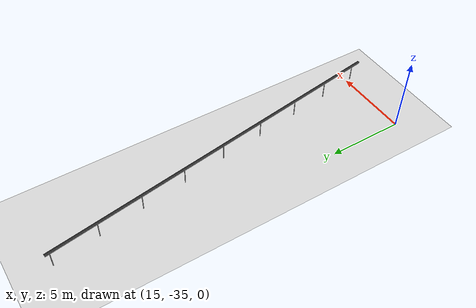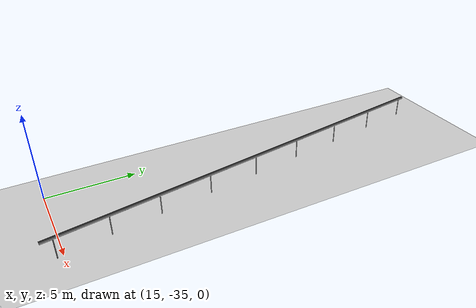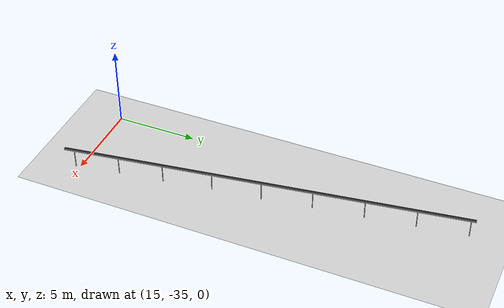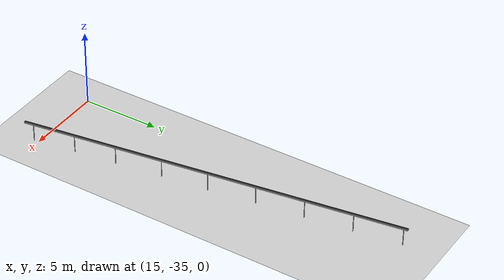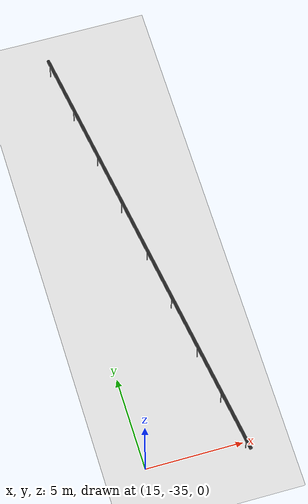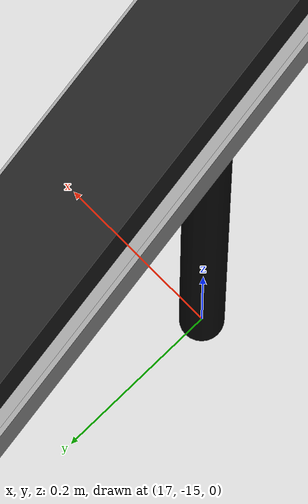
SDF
<sdf version="1.7">
 <world name="default">
  <atmosphere type="adiabatic"/>
  <light name="sun" type="directional">
   <direction>-0.5 0.1 -0.9</direction>
   <pose>0 0 10 0.0 0.0 0.0</pose>
   <attenuation>
    <range>1000</range>
    <quadratic>0.001</quadratic>
    <constant>0.9</constant>
    <linear>0.01</linear>
   </attenuation>
   <diffuse>0.8 0.8 0.8 1</diffuse>
   <specular>0.2 0.2 0.2 1</specular>
   <spot><inner_angle>0</inner_angle><outer_angle>0</outer_angle><falloff>0</falloff></spot>
  </light>
  <scene>
   <shadows>1</shadows>
   <sky><clouds><speed>12</speed></clouds></sky>
   <background>0.7 0.7 0.7 1</background>
   <ambient>0.4 0.4 0.4 1</ambient>
  </scene>
  <gravity>0 0 -9.8</gravity>
  <magnetic_field>6e-06 2.3e-05 -4.2e-05</magnetic_field>
  <model name="ground_plane">
   <static>1</static>
   <link name="link">
    <collision name="collision">
     <geometry><plane><normal>0 0 1</normal><size>100 100</size></plane></geometry>
     <surface><friction><ode><mu>100</mu><mu2>50</mu2></ode></friction></surface>
    </collision>
    <visual name="visual">
     <cast_shadows>0</cast_shadows>
     <geometry><plane><normal>0 0 1</normal><size>100 100</size></plane></geometry>
     <material>
      <script><uri>file://media/materials/scripts/gazebo.material</uri><name>Gazebo/Grey</name></script>
     </material>
    </visual>
   </link>
  </model>
  <model name="pole_27">
   <link name="link">
    <collision name="collision">
     <geometry><cylinder><length>1.15</length><radius>0.025</radius></cylinder></geometry>
    </collision>
    <visual name="visual">
     <geometry><cylinder><length>1.15</length><radius>0.025</radius></cylinder></geometry>
     <material>
      <script><uri>file://media/materials/scripts/gazebo.material</uri><name>Gazebo/Chrome</name></script>
      <emissive>0.1 0.1 0.1 1</emissive>
      <shader type="vertex"><normal_map>__default__</normal_map></shader>
      <specular>0.01 0.01 0.01 1</specular>
      <ambient>0.5 0.5 0.5 1</ambient>
      <diffuse>0.05 0.05 0.05 1</diffuse>
     </material>
    </visual>
   </link>
   <static>1</static>
   <pose>16.54 -12.05 0.575 0.0 0.0 0.0</pose>
  </model>
  <model name="pole_28">
   <link name="link">
    <collision name="collision">
     <geometry><cylinder><length>1.15</length><radius>0.025</radius></cylinder></geometry>
    </collision>
    <visual name="visual">
     <geometry><cylinder><length>1.15</length><radius>0.025</radius></cylinder></geometry>
     <material>
      <script><uri>file://media/materials/scripts/gazebo.material</uri><name>Gazebo/Chrome</name></script>
      <emissive>0.1 0.1 0.1 1</emissive>
      <shader type="vertex"><normal_map>__default__</normal_map></shader>
      <specular>0.01 0.01 0.01 1</specular>
      <ambient>0.5 0.5 0.5 1</ambient>
      <diffuse>0.05 0.05 0.05 1</diffuse>
     </material>
    </visual>
   </link>
   <static>1</static>
   <pose>17 -15 0.575 0.0 0.0 0.0</pose>
  </model>
  <model name="pole_29">
   <link name="link">
    <collision name="collision">
     <geometry><cylinder><length>1.15</length><radius>0.025</radius></cylinder></geometry>
    </collision>
    <visual name="visual">
     <geometry><cylinder><length>1.15</length><radius>0.025</radius></cylinder></geometry>
     <material>
      <script><uri>file://media/materials/scripts/gazebo.material</uri><name>Gazebo/Chrome</name></script>
      <emissive>0.1 0.1 0.1 1</emissive>
      <shader type="vertex"><normal_map>__default__</normal_map></shader>
      <specular>0.01 0.01 0.01 1</specular>
      <ambient>0.5 0.5 0.5 1</ambient>
      <diffuse>0.05 0.05 0.05 1</diffuse>
     </material>
    </visual>
   </link>
   <static>1</static>
   <pose>17.45 -17.95 0.575 0.0 0.0 0.0</pose>
  </model>
  <model name="pole_30">
   <link name="link">
    <collision name="collision">
     <geometry><cylinder><length>1.15</length><radius>0.025</radius></cylinder></geometry>
    </collision>
    <visual name="visual">
     <geometry><cylinder><length>1.15</length><radius>0.025</radius></cylinder></geometry>
     <material>
      <script><uri>file://media/materials/scripts/gazebo.material</uri><name>Gazebo/Chrome</name></script>
      <emissive>0.1 0.1 0.1 1</emissive>
      <shader type="vertex"><normal_map>__default__</normal_map></shader>
      <specular>0.01 0.01 0.01 1</specular>
      <ambient>0.5 0.5 0.5 1</ambient>
      <diffuse>0.05 0.05 0.05 1</diffuse>
     </material>
    </visual>
   </link>
   <static>1</static>
   <pose>17.87 -20.96 0.575 0.0 0.0 0.0</pose>
  </model>
  <model name="pole_31">
   <link name="link">
    <collision name="collision">
     <geometry><cylinder><length>1.15</length><radius>0.025</radius></cylinder></geometry>
    </collision>
    <visual name="visual">
     <geometry><cylinder><length>1.15</length><radius>0.025</radius></cylinder></geometry>
     <material>
      <script><uri>file://media/materials/scripts/gazebo.material</uri><name>Gazebo/Chrome</name></script>
      <emissive>0.1 0.1 0.1 1</emissive>
      <shader type="vertex"><normal_map>__default__</normal_map></shader>
      <specular>0.01 0.01 0.01 1</specular>
      <ambient>0.5 0.5 0.5 1</ambient>
      <diffuse>0.05 0.05 0.05 1</diffuse>
     </material>
    </visual>
   </link>
   <static>1</static>
   <pose>18.35 -23.95 0.575 0.0 0.0 0.0</pose>
  </model>
  <model name="pole_32">
   <link name="link">
    <collision name="collision">
     <geometry><cylinder><length>1.15</length><radius>0.025</radius></cylinder></geometry>
    </collision>
    <visual name="visual">
     <geometry><cylinder><length>1.15</length><radius>0.025</radius></cylinder></geometry>
     <material>
      <script><uri>file://media/materials/scripts/gazebo.material</uri><name>Gazebo/Chrome</name></script>
      <emissive>0.1 0.1 0.1 1</emissive>
      <shader type="vertex"><normal_map>__default__</normal_map></shader>
      <specular>0.01 0.01 0.01 1</specular>
      <ambient>0.5 0.5 0.5 1</ambient>
      <diffuse>0.05 0.05 0.05 1</diffuse>
     </material>
    </visual>
   </link>
   <static>1</static>
   <pose>18.75 -26.92 0.575 0.0 0.0 0.0</pose>
  </model>
  <model name="pole_33">
   <link name="link">
    <collision name="collision">
     <geometry><cylinder><length>1.15</length><radius>0.025</radius></cylinder></geometry>
    </collision>
    <visual name="visual">
     <geometry><cylinder><length>1.15</length><radius>0.025</radius></cylinder></geometry>
     <material>
      <script><uri>file://media/materials/scripts/gazebo.material</uri><name>Gazebo/Chrome</name></script>
      <emissive>0.1 0.1 0.1 1</emissive>
      <shader type="vertex"><normal_map>__default__</normal_map></shader>
      <specular>0.01 0.01 0.01 1</specular>
      <ambient>0.5 0.5 0.5 1</ambient>
      <diffuse>0.05 0.05 0.05 1</diffuse>
     </material>
    </visual>
   </link>
   <static>1</static>
   <pose>19.2 -29.9 0.575 0.0 0.0 0.0</pose>
  </model>
  <model name="pole_34">
   <link name="link">
    <collision name="collision">
     <geometry><cylinder><length>1.15</length><radius>0.025</radius></cylinder></geometry>
    </collision>
    <visual name="visual">
     <geometry><cylinder><length>1.15</length><radius>0.025</radius></cylinder></geometry>
     <material>
      <script><uri>file://media/materials/scripts/gazebo.material</uri><name>Gazebo/Chrome</name></script>
      <emissive>0.1 0.1 0.1 1</emissive>
      <shader type="vertex"><normal_map>__default__</normal_map></shader>
      <specular>0.01 0.01 0.01 1</specular>
      <ambient>0.5 0.5 0.5 1</ambient>
      <diffuse>0.05 0.05 0.05 1</diffuse>
     </material>
    </visual>
   </link>
   <static>1</static>
   <pose>19.6 -32.6 0.575 0.0 0.0 0.0</pose>
  </model>
  <model name="pole_35">
   <link name="link">
    <collision name="collision">
     <geometry><cylinder><length>1.15</length><radius>0.025</radius></cylinder></geometry>
    </collision>
    <visual name="visual">
     <geometry><cylinder><length>1.15</length><radius>0.025</radius></cylinder></geometry>
     <material>
      <script><uri>file://media/materials/scripts/gazebo.material</uri><name>Gazebo/Chrome</name></script>
      <emissive>0.1 0.1 0.1 1</emissive>
      <shader type="vertex"><normal_map>__default__</normal_map></shader>
      <specular>0.01 0.01 0.01 1</specular>
      <ambient>0.5 0.5 0.5 1</ambient>
      <diffuse>0.05 0.05 0.05 1</diffuse>
     </material>
    </visual>
   </link>
   <static>1</static>
   <pose>20.05 -35.3 0.575 0.0 0.0 0.0</pose>
  </model>
  <model name="tray_3">
   <static>1</static>
   <link name="link_0">
    <collision name="collision"><geometry><box><size>24.365 0.15 0.005</size></box></geometry></collision>
    <visual name="visual">
     <geometry><box><size>24.365 0.15 0.005</size></box></geometry>
     <material>
      <script><uri>file://media/materials/scripts/gazebo.material</uri><name>Gazebo/Grey</name></script>
      <emissive>0 0 0 1</emissive>
      <shader type="vertex"><normal_map>__default__</normal_map></shader>
      <specular>0.01 0.01 0.01 1</specular>
      <lighting>1</lighting>
      <ambient>0.7 0.7 0.7 1</ambient>
      <diffuse>0.3 0.3 0.3 1</diffuse>
     </material>
    </visual>
    <pose>18.312 -23.848 1.14965 0 -0 -1.42318</pose>
   </link>
  </model>
  <model name="tray_p2_6">
   <static>1</static>
   <link name="link_0">
    <collision name="collision"><geometry><box><size>24.36 0.085 0.005</size></box></geometry></collision>
    <visual name="visual">
     <geometry><box><size>24.36 0.085 0.005</size></box></geometry>
     <material>
      <script><uri>file://media/materials/scripts/gazebo.material</uri><name>Gazebo/Grey</name></script>
      <emissive>0 0 0 1</emissive>
      <shader type="vertex"><normal_map>__default__</normal_map></shader>
      <specular>0.01 0.01 0.01 1</specular>
      <lighting>1</lighting>
      <ambient>0.7 0.7 0.7 1</ambient>
      <diffuse>0.3 0.3 0.3 1</diffuse>
     </material>
    </visual>
    <pose>18.387 -23.848 1.19165 1.5707 -0 -1.42318</pose>
   </link>
  </model>
  <model name="tray_p2_7">
   <static>1</static>
   <link name="link_0">
    <collision name="collision"><geometry><box><size>24.36 0.085 0.005</size></box></geometry></collision>
    <visual name="visual">
     <geometry><box><size>24.36 0.085 0.005</size></box></geometry>
     <material>
      <script><uri>file://media/materials/scripts/gazebo.material</uri><name>Gazebo/Grey</name></script>
      <emissive>0 0 0 1</emissive>
      <shader type="vertex"><normal_map>__default__</normal_map></shader>
      <specular>0.01 0.01 0.01 1</specular>
      <lighting>1</lighting>
      <ambient>0.7 0.7 0.7 1</ambient>
      <diffuse>0.3 0.3 0.3 1</diffuse>
     </material>
    </visual>
    <pose>18.237 -23.848 1.19165 1.5707 -0 -1.42318</pose>
   </link>
  </model>
  <model name="growing_medium_08">
   <static>1</static>
   <pose>18.3192 -23.8352 1.20002 0.000174 -0.000169 0.147389</pose>
   <link name="link">
    <inertial>
     <mass>75</mass>
     <inertia>
      <ixx>0.166667</ixx>
      <ixy>0</ixy>
      <ixz>0</ixz>
      <iyy>0.166667</iyy>
      <iyz>0</iyz>
      <izz>0.166667</izz>
     </inertia>
    </inertial>
    <collision name="collision"><geometry><box><size>0.12 24.4 0.1</size></box></geometry></collision>
    <visual name="visual">
     <geometry><box><size>0.12 24.4 0.1</size></box></geometry>
     <material>
      <script><name>Gazebo/Black</name><uri>file://media/materials/scripts/gazebo.material</uri></script>
     </material>
    </visual>
   </link>
  </model>
  <spherical_coordinates>
   <surface_model>EARTH_WGS84</surface_model>
   <latitude_deg>53.268642038</latitude_deg>
   <longitude_deg>-0.524509505881</longitude_deg>
   <elevation>0.0</elevation>
   <heading_deg>180</heading_deg>
  </spherical_coordinates>
  <physics type="ode">
   <max_step_size>0.001</max_step_size>
   <real_time_factor>1</real_time_factor>
   <real_time_update_rate>1000</real_time_update_rate>
  </physics>
  <audio><device>default</device></audio>
 </world>
</sdf>
